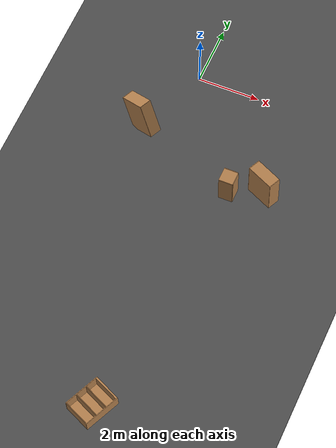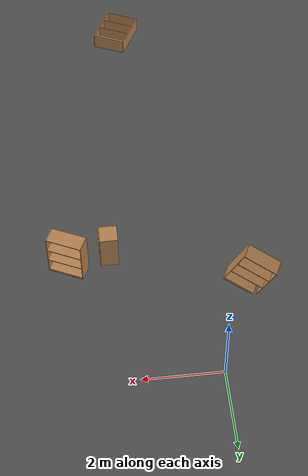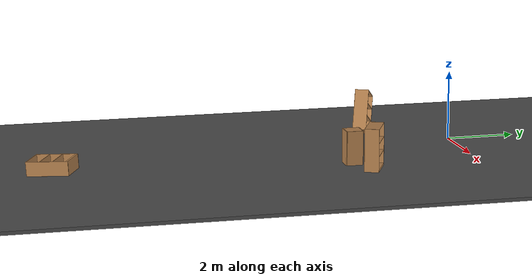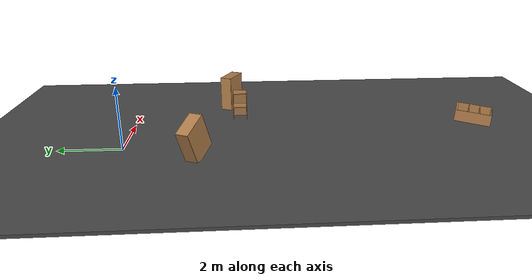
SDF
<sdf version="1.6">
 <world name="default">
  <model name="ground_plane">
   <static>1</static>
   <link name="link">
    <collision name="collision">
     <geometry><plane><normal>0 0 1</normal><size>100 100</size></plane></geometry>
     <surface><friction><ode><mu>100</mu><mu2>50</mu2></ode></friction></surface>
    </collision>
    <visual name="visual">
     <cast_shadows>0</cast_shadows>
     <geometry><plane><normal>0 0 1</normal><size>100 100</size></plane></geometry>
     <material>
      <script><uri>file://media/materials/scripts/gazebo.material</uri><name>Gazebo/Grey</name></script>
     </material>
    </visual>
    <velocity_decay><linear>0</linear><angular>0</angular></velocity_decay>
   </link>
  </model>
  <model name="cabinet">
   <static>1</static>
   <link name="cabinet_bottom_plate">
    <inertial>
     <pose>0 0 -1 0 -0 0</pose>
     <inertia><ixx>2.05</ixx><ixy>0</ixy><ixz>0</ixz><iyy>2.05</iyy><iyz>0</iyz><izz>2.05</izz></inertia>
     <mass>25</mass>
    </inertial>
    <collision name="cabinet_bottom_plate_geom">
     <pose>0 0 0.01 0 -0 0</pose>
     <geometry><box><size>0.45 0.45 0.02</size></box></geometry>
    </collision>
    <visual name="cabinet_bottom_plate_geom_visual">
     <pose>0 0 0.01 0 -0 0</pose>
     <geometry><box><size>0.45 0.45 0.02</size></box></geometry>
     <material>
      <script><uri>file://media/materials/scripts/gazebo.material</uri><name>Gazebo/Wood</name></script>
     </material>
    </visual>
    <collision name="cabinet_bottom_plate_geom_cabinet_back_plate">
     <pose>0.235 0 0.51 0 -0 0</pose>
     <geometry><box><size>0.02 0.45 1.02</size></box></geometry>
    </collision>
    <visual name="cabinet_bottom_plate_geom_cabinet_back_plate_visual">
     <pose>0.235 0 0.51 0 -0 0</pose>
     <geometry><box><size>0.02 0.45 1.02</size></box></geometry>
     <material>
      <script><uri>file://media/materials/scripts/gazebo.material</uri><name>Gazebo/Wood</name></script>
     </material>
    </visual>
    <collision name="cabinet_bottom_plate_geom_cabinet_left_plate">
     <pose>0 0.235 0.51 0 -0 0</pose>
     <geometry><box><size>0.45 0.02 1.02</size></box></geometry>
    </collision>
    <visual name="cabinet_bottom_plate_geom_cabinet_left_plate_visual">
     <pose>0 0.235 0.51 0 -0 0</pose>
     <geometry><box><size>0.45 0.02 1.02</size></box></geometry>
     <material>
      <script><uri>file://media/materials/scripts/gazebo.material</uri><name>Gazebo/Wood</name></script>
     </material>
    </visual>
    <collision name="cabinet_bottom_plate_geom_cabinet_middle_plate">
     <pose>0 0 0.51 0 -0 0</pose>
     <geometry><box><size>0.45 0.45 0.02</size></box></geometry>
    </collision>
    <visual name="cabinet_bottom_plate_geom_cabinet_middle_plate_visual">
     <pose>0 0 0.51 0 -0 0</pose>
     <geometry><box><size>0.45 0.45 0.02</size></box></geometry>
     <material>
      <script><uri>file://media/materials/scripts/gazebo.material</uri><name>Gazebo/Wood</name></script>
     </material>
    </visual>
    <collision name="cabinet_bottom_plate_geom_cabinet_right_plate">
     <pose>0 -0.235 0.51 0 -0 0</pose>
     <geometry><box><size>0.45 0.02 1.02</size></box></geometry>
    </collision>
    <visual name="cabinet_bottom_plate_geom_cabinet_right_plate_visual">
     <pose>0 -0.235 0.51 0 -0 0</pose>
     <geometry><box><size>0.45 0.02 1.02</size></box></geometry>
     <material>
      <script><uri>file://media/materials/scripts/gazebo.material</uri><name>Gazebo/Wood</name></script>
     </material>
    </visual>
    <collision name="cabinet_bottom_plate_geom_cabinet_top_plate">
     <pose>0 0 1.01 0 -0 0</pose>
     <geometry><box><size>0.45 0.45 0.02</size></box></geometry>
    </collision>
    <visual name="cabinet_bottom_plate_geom_cabinet_top_plate_visual">
     <pose>0 0 1.01 0 -0 0</pose>
     <geometry><box><size>0.45 0.45 0.02</size></box></geometry>
     <material>
      <script><uri>file://media/materials/scripts/gazebo.material</uri><name>Gazebo/Wood</name></script>
     </material>
    </visual>
   </link>
   <pose>2.45452 -3.62395 0 0 -0 0</pose>
  </model>
  <model name="bookshelf">
   <static>1</static>
   <link name="link">
    <inertial><mass>1</mass></inertial>
    <collision name="back">
     <pose>0 0.005 0.6 0 -0 0</pose>
     <geometry><box><size>0.9 0.01 1.2</size></box></geometry>
    </collision>
    <visual name="visual1">
     <pose>0 0.005 0.6 0 -0 0</pose>
     <geometry><box><size>0.9 0.01 1.2</size></box></geometry>
     <material>
      <script><uri>file://media/materials/scripts/gazebo.material</uri><name>Gazebo/Wood</name></script>
     </material>
    </visual>
    <collision name="left_side">
     <pose>0.45 -0.195 0.6 0 -0 0</pose>
     <geometry><box><size>0.02 0.4 1.2</size></box></geometry>
    </collision>
    <visual name="visual2">
     <pose>0.45 -0.195 0.6 0 -0 0</pose>
     <geometry><box><size>0.02 0.4 1.2</size></box></geometry>
     <material>
      <script><uri>file://media/materials/scripts/gazebo.material</uri><name>Gazebo/Wood</name></script>
     </material>
    </visual>
    <collision name="right_side">
     <pose>-0.45 -0.195 0.6 0 -0 0</pose>
     <geometry><box><size>0.02 0.4 1.2</size></box></geometry>
    </collision>
    <visual name="visual3">
     <pose>-0.45 -0.195 0.6 0 -0 0</pose>
     <geometry><box><size>0.02 0.4 1.2</size></box></geometry>
     <material>
      <script><uri>file://media/materials/scripts/gazebo.material</uri><name>Gazebo/Wood</name></script>
     </material>
    </visual>
    <collision name="bottom">
     <pose>0 -0.195 0.03 0 -0 0</pose>
     <geometry><box><size>0.88 0.4 0.06</size></box></geometry>
    </collision>
    <visual name="visual4">
     <pose>0 -0.195 0.03 0 -0 0</pose>
     <geometry><box><size>0.88 0.4 0.06</size></box></geometry>
     <material>
      <script><uri>file://media/materials/scripts/gazebo.material</uri><name>Gazebo/Wood</name></script>
     </material>
    </visual>
    <collision name="top">
     <pose>0 -0.195 1.19 0 -0 0</pose>
     <geometry><box><size>0.88 0.4 0.02</size></box></geometry>
    </collision>
    <visual name="visual5">
     <pose>0 -0.195 1.19 0 -0 0</pose>
     <geometry><box><size>0.88 0.4 0.02</size></box></geometry>
     <material>
      <script><uri>file://media/materials/scripts/gazebo.material</uri><name>Gazebo/Wood</name></script>
     </material>
    </visual>
    <collision name="low_shelf">
     <pose>0 -0.195 0.43 0 -0 0</pose>
     <geometry><box><size>0.88 0.4 0.02</size></box></geometry>
    </collision>
    <visual name="visual6">
     <pose>0 -0.195 0.43 0 -0 0</pose>
     <geometry><box><size>0.88 0.4 0.02</size></box></geometry>
     <material>
      <script><uri>file://media/materials/scripts/gazebo.material</uri><name>Gazebo/Wood</name></script>
     </material>
    </visual>
    <collision name="high_shelf">
     <pose>0 -0.195 0.8 0 -0 0</pose>
     <geometry><box><size>0.88 0.4 0.02</size></box></geometry>
    </collision>
    <visual name="visual7">
     <pose>0 -0.195 0.8 0 -0 0</pose>
     <geometry><box><size>0.88 0.4 0.02</size></box></geometry>
     <material>
      <script><uri>file://media/materials/scripts/gazebo.material</uri><name>Gazebo/Wood</name></script>
     </material>
    </visual>
   </link>
   <pose>3.4123 -3.48385 0.144856 0 -0 2.70545</pose>
  </model>
  <model name="asphalt_plane_big">
   <link name="link">
    <inertial>
     <mass>1</mass>
     <inertia><ixx>1</ixx><ixy>0</ixy><ixz>0</ixz><iyy>1</iyy><iyz>0</iyz><izz>1</izz></inertia>
    </inertial>
    <visual name="visual">
     <cast_shadows>0</cast_shadows>
     <geometry><box><size>40 40 0.1</size></box></geometry>
     <material>
      <script>
       <uri>model://asphalt_plane/materials/scripts</uri>
       <uri>model://asphalt_plane/materials/textures</uri>
       <name>vrc/asphalt</name>
      </script>
      <shader type="pixel"><normal_map>__default__</normal_map></shader>
      <ambient>0.5 0.5 0.5 1</ambient>
      <diffuse>0.5 0.5 0.5 1</diffuse>
      <specular>0.2 0.2 0.2 1</specular>
      <emissive>0 0 0 1</emissive>
     </material>
    </visual>
    <collision name="collision">
     <geometry><box><size>40 40 0.1</size></box></geometry>
     <surface>
      <friction>
       <ode><mu>1</mu><mu2>1</mu2><fdir1>0 0 0</fdir1><slip1>0</slip1><slip2>0</slip2></ode>
       <torsional>
        <coefficient>1</coefficient>
        <patch_radius>0</patch_radius>
        <surface_radius>0</surface_radius>
        <use_patch_radius>1</use_patch_radius>
        <ode><slip>0</slip></ode>
       </torsional>
      </friction>
      <bounce><restitution_coefficient>0</restitution_coefficient><threshold>1e+06</threshold></bounce>
      <contact>
       <collide_without_contact>0</collide_without_contact>
       <collide_without_contact_bitmask>1</collide_without_contact_bitmask>
       <collide_bitmask>1</collide_bitmask>
       <ode>
        <soft_cfm>0</soft_cfm>
        <soft_erp>0.2</soft_erp>
        <kp>1e+13</kp>
        <kd>1</kd>
        <max_vel>0.01</max_vel>
        <min_depth>0</min_depth>
       </ode>
       <bullet>
        <split_impulse>1</split_impulse>
        <split_impulse_penetration_threshold>-0.01</split_impulse_penetration_threshold>
        <soft_cfm>0</soft_cfm>
        <soft_erp>0.2</soft_erp>
        <kp>1e+13</kp>
        <kd>1</kd>
       </bullet>
      </contact>
     </surface>
    </collision>
   </link>
   <static>1</static>
   <pose>1.77678 -8.47585 0 0 -0 0</pose>
  </model>
  <model name="bookshelf_clone">
   <static>1</static>
   <link name="link">
    <inertial><mass>1</mass></inertial>
    <collision name="back">
     <pose>0 0.005 0.6 0 -0 0</pose>
     <geometry><box><size>0.9 0.01 1.2</size></box></geometry>
    </collision>
    <visual name="visual1">
     <pose>0 0.005 0.6 0 -0 0</pose>
     <geometry><box><size>0.9 0.01 1.2</size></box></geometry>
     <material>
      <script><uri>file://media/materials/scripts/gazebo.material</uri><name>Gazebo/Wood</name></script>
     </material>
    </visual>
    <collision name="left_side">
     <pose>0.45 -0.195 0.6 0 -0 0</pose>
     <geometry><box><size>0.02 0.4 1.2</size></box></geometry>
    </collision>
    <visual name="visual2">
     <pose>0.45 -0.195 0.6 0 -0 0</pose>
     <geometry><box><size>0.02 0.4 1.2</size></box></geometry>
     <material>
      <script><uri>file://media/materials/scripts/gazebo.material</uri><name>Gazebo/Wood</name></script>
     </material>
    </visual>
    <collision name="right_side">
     <pose>-0.45 -0.195 0.6 0 -0 0</pose>
     <geometry><box><size>0.02 0.4 1.2</size></box></geometry>
    </collision>
    <visual name="visual3">
     <pose>-0.45 -0.195 0.6 0 -0 0</pose>
     <geometry><box><size>0.02 0.4 1.2</size></box></geometry>
     <material>
      <script><uri>file://media/materials/scripts/gazebo.material</uri><name>Gazebo/Wood</name></script>
     </material>
    </visual>
    <collision name="bottom">
     <pose>0 -0.195 0.03 0 -0 0</pose>
     <geometry><box><size>0.88 0.4 0.06</size></box></geometry>
    </collision>
    <visual name="visual4">
     <pose>0 -0.195 0.03 0 -0 0</pose>
     <geometry><box><size>0.88 0.4 0.06</size></box></geometry>
     <material>
      <script><uri>file://media/materials/scripts/gazebo.material</uri><name>Gazebo/Wood</name></script>
     </material>
    </visual>
    <collision name="top">
     <pose>0 -0.195 1.19 0 -0 0</pose>
     <geometry><box><size>0.88 0.4 0.02</size></box></geometry>
    </collision>
    <visual name="visual5">
     <pose>0 -0.195 1.19 0 -0 0</pose>
     <geometry><box><size>0.88 0.4 0.02</size></box></geometry>
     <material>
      <script><uri>file://media/materials/scripts/gazebo.material</uri><name>Gazebo/Wood</name></script>
     </material>
    </visual>
    <collision name="low_shelf">
     <pose>0 -0.195 0.43 0 -0 0</pose>
     <geometry><box><size>0.88 0.4 0.02</size></box></geometry>
    </collision>
    <visual name="visual6">
     <pose>0 -0.195 0.43 0 -0 0</pose>
     <geometry><box><size>0.88 0.4 0.02</size></box></geometry>
     <material>
      <script><uri>file://media/materials/scripts/gazebo.material</uri><name>Gazebo/Wood</name></script>
     </material>
    </visual>
    <collision name="high_shelf">
     <pose>0 -0.195 0.8 0 -0 0</pose>
     <geometry><box><size>0.88 0.4 0.02</size></box></geometry>
    </collision>
    <visual name="visual7">
     <pose>0 -0.195 0.8 0 -0 0</pose>
     <geometry><box><size>0.88 0.4 0.02</size></box></geometry>
     <material>
      <script><uri>file://media/materials/scripts/gazebo.material</uri><name>Gazebo/Wood</name></script>
     </material>
    </visual>
   </link>
   <pose>1.87554 -11.3415 0.133934 -1.63594 -0 2.70545</pose>
  </model>
  <model name="bookshelf_clone_0">
   <static>1</static>
   <link name="link">
    <inertial><mass>1</mass></inertial>
    <collision name="back">
     <pose>0 0.005 0.6 0 -0 0</pose>
     <geometry><box><size>0.9 0.01 1.2</size></box></geometry>
    </collision>
    <visual name="visual1">
     <pose>0 0.005 0.6 0 -0 0</pose>
     <geometry><box><size>0.9 0.01 1.2</size></box></geometry>
     <material>
      <script><uri>file://media/materials/scripts/gazebo.material</uri><name>Gazebo/Wood</name></script>
     </material>
    </visual>
    <collision name="left_side">
     <pose>0.45 -0.195 0.6 0 -0 0</pose>
     <geometry><box><size>0.02 0.4 1.2</size></box></geometry>
    </collision>
    <visual name="visual2">
     <pose>0.45 -0.195 0.6 0 -0 0</pose>
     <geometry><box><size>0.02 0.4 1.2</size></box></geometry>
     <material>
      <script><uri>file://media/materials/scripts/gazebo.material</uri><name>Gazebo/Wood</name></script>
     </material>
    </visual>
    <collision name="right_side">
     <pose>-0.45 -0.195 0.6 0 -0 0</pose>
     <geometry><box><size>0.02 0.4 1.2</size></box></geometry>
    </collision>
    <visual name="visual3">
     <pose>-0.45 -0.195 0.6 0 -0 0</pose>
     <geometry><box><size>0.02 0.4 1.2</size></box></geometry>
     <material>
      <script><uri>file://media/materials/scripts/gazebo.material</uri><name>Gazebo/Wood</name></script>
     </material>
    </visual>
    <collision name="bottom">
     <pose>0 -0.195 0.03 0 -0 0</pose>
     <geometry><box><size>0.88 0.4 0.06</size></box></geometry>
    </collision>
    <visual name="visual4">
     <pose>0 -0.195 0.03 0 -0 0</pose>
     <geometry><box><size>0.88 0.4 0.06</size></box></geometry>
     <material>
      <script><uri>file://media/materials/scripts/gazebo.material</uri><name>Gazebo/Wood</name></script>
     </material>
    </visual>
    <collision name="top">
     <pose>0 -0.195 1.19 0 -0 0</pose>
     <geometry><box><size>0.88 0.4 0.02</size></box></geometry>
    </collision>
    <visual name="visual5">
     <pose>0 -0.195 1.19 0 -0 0</pose>
     <geometry><box><size>0.88 0.4 0.02</size></box></geometry>
     <material>
      <script><uri>file://media/materials/scripts/gazebo.material</uri><name>Gazebo/Wood</name></script>
     </material>
    </visual>
    <collision name="low_shelf">
     <pose>0 -0.195 0.43 0 -0 0</pose>
     <geometry><box><size>0.88 0.4 0.02</size></box></geometry>
    </collision>
    <visual name="visual6">
     <pose>0 -0.195 0.43 0 -0 0</pose>
     <geometry><box><size>0.88 0.4 0.02</size></box></geometry>
     <material>
      <script><uri>file://media/materials/scripts/gazebo.material</uri><name>Gazebo/Wood</name></script>
     </material>
    </visual>
    <collision name="high_shelf">
     <pose>0 -0.195 0.8 0 -0 0</pose>
     <geometry><box><size>0.88 0.4 0.02</size></box></geometry>
    </collision>
    <visual name="visual7">
     <pose>0 -0.195 0.8 0 -0 0</pose>
     <geometry><box><size>0.88 0.4 0.02</size></box></geometry>
     <material>
      <script><uri>file://media/materials/scripts/gazebo.material</uri><name>Gazebo/Wood</name></script>
     </material>
    </visual>
   </link>
   <pose>-0.83956 -2.62792 0.144856 0 0.409589 2.70545</pose>
  </model>
 </world>
</sdf>
